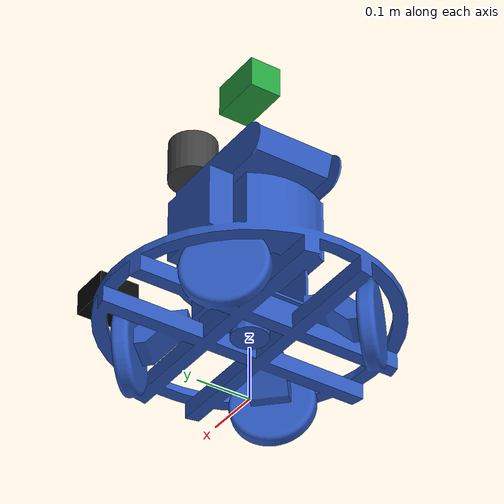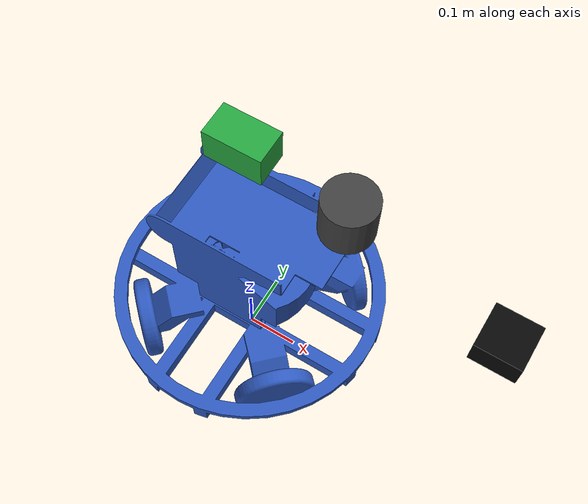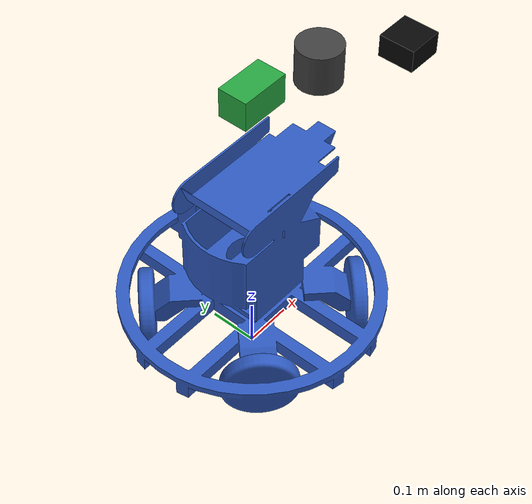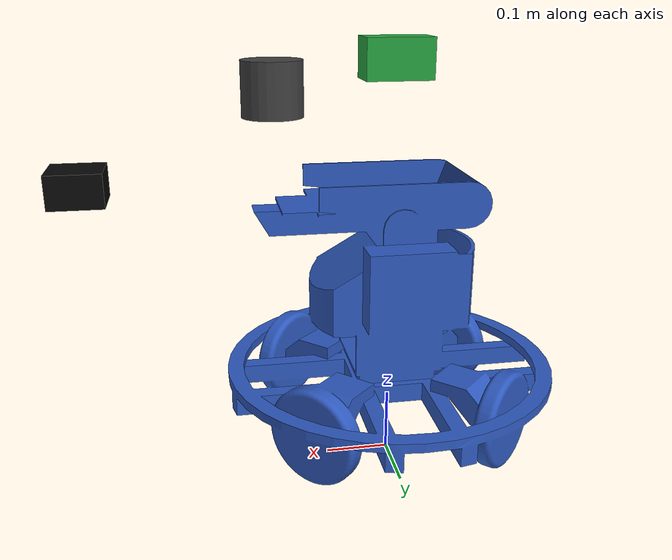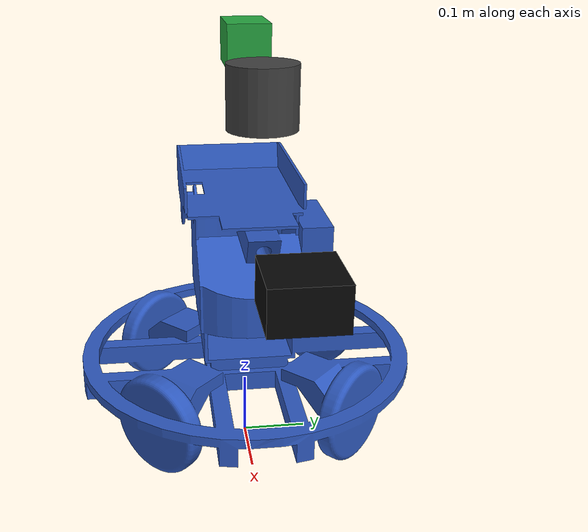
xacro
<?xml version="1.0"?>
<robot xmlns:xacro="http://www.ros.org/wiki/xacro" name="mid360_robot">

  <xacro:arg name="camera_topic" default="/camera/image_raw"/>
  <xacro:arg name="camera_info_topic" default="/camera/camera_info"/>
  <xacro:arg name="mid360_topic" default="/mid360_points"/>
  <xacro:arg name="laser_topic" default="/laser_points"/>

  <xacro:include filename="$(find bot_description)/urdf/base.urdf.xacro"/>
  <xacro:include filename="$(find bot_description)/urdf/camera.xacro"/>
  <xacro:include filename="$(find bot_description)/urdf/mid360_mount.xacro"/>
  <xacro:include filename="$(find bot_description)/urdf/laser.xacro"/>

  <xacro:base/>

  <xacro:camera
    name="front_camera"
    parent="base_link"
    image_topic="$(arg camera_topic)"
    info_topic="$(arg camera_info_topic)"
    update_rate="10.0">
    <!-- P把相机光学中心放在底盘前方、车顶上方。 -->
    <origin xyz="0.46 0 0.35" rpy="0 0 0"/>
  </xacro:camera>

  <xacro:mid360
    name="mid360"
    parent="base_link"
    topic="$(arg mid360_topic)"
    update_rate="10.0">
    <!-- 高安装可以让 360 度扫描避开底盘顶部，避免遮挡。 -->
    <origin xyz="0 0 0.52" rpy="0 0 0"/>
  </xacro:mid360>

  <xacro:laser
    name="laser"
    parent="base_link"
    topic="$(arg laser_topic)"
    update_rate="15.0">
    <!-- Front/top mount; the point cloud is published independently of MID360. -->
    <origin xyz="0.18 0 0.48" rpy="0 0 0"/>
  </xacro:laser>

  <!-- A simple planar controller makes cmd_vel/odom available in Gazebo. -->
  <gazebo>
    <plugin name="planar_move_controller" filename="libgazebo_ros_planar_move.so">
      <command_topic>cmd_vel</command_topic>
      <odometry_topic>odom</odometry_topic>
      <odometry_frame>odom</odometry_frame>
      <robot_base_frame>base_footprint</robot_base_frame>
      <publish_odom>true</publish_odom>
      <publish_odom_tf>true</publish_odom_tf>
      <update_rate>20.0</update_rate>
    </plugin>
  </gazebo>
</robot>

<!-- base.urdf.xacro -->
<robot xmlns:xacro="http://www.ros.org/wiki/xacro" name="base">

  <!-- Dimensions are deliberately kept in one place so the model is easy to tune. -->
  <xacro:property name="body_length" value="0.80"/>
  <xacro:property name="body_width" value="0.60"/>
  <xacro:property name="body_height" value="0.24"/>
  <xacro:property name="body_mass" value="8.0"/>

  <xacro:macro name="box_inertia" params="mass x y z">
    <inertial>
      <mass value="${mass}"/>
      <inertia
        ixx="${mass * (y*y + z*z) / 12.0}"
        ixy="0.0"
        ixz="0.0"
        iyy="${mass * (x*x + z*z) / 12.0}"
        iyz="0.0"
        izz="${mass * (x*x + y*y) / 12.0}"/>
    </inertial>
  </xacro:macro>

  <xacro:macro name="base">
    <!-- Ground-projected frame used by navigation and the planar Gazebo controller. -->
    <link name="base_footprint"/>

    <link name="base_link">
      <xacro:box_inertia
        mass="${body_mass}"
        x="${body_length}"
        y="${body_width}"
        z="${body_height}"/>

      <visual name="base_visual">
        <origin xyz="0 0 0" rpy="0 0 0"/>
        <geometry>
          <mesh filename="file://$(find bot_description)/meshes/base_link.STL"/>
        </geometry>
        <material name="body_blue">
          <color rgba="0.18 0.35 0.75 1.0"/>
        </material>
      </visual>

      <!-- A simple box collision keeps Gazebo stable even if the visual mesh is complex. -->
      <collision name="base_collision">
        <origin xyz="0 0 0" rpy="0 0 0"/>
        <geometry>
          <box size="${body_length} ${body_width} ${body_height}"/>
        </geometry>
      </collision>
    </link>

    <joint name="base_footprint_to_base_link" type="fixed">
      <parent link="base_footprint"/>
      <child link="base_link"/>
      <origin xyz="0 0 ${body_height / 2.0}" rpy="0 0 0"/>
    </joint>

    <gazebo reference="base_link">
      <material>Gazebo/Blue</material>
      <mu1>0.8</mu1>
      <mu2>0.8</mu2>
      <kp>20000.0</kp>
      <kd>10.0</kd>
      <minDepth>0.001</minDepth>
      <maxVel>100.0</maxVel>
    </gazebo>
  </xacro:macro>
</robot>

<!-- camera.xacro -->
<robot xmlns:xacro="http://www.ros.org/wiki/xacro" name="camera">

  <xacro:property name="camera_width" value="0.08"/>
  <xacro:property name="camera_height" value="0.05"/>
  <xacro:property name="camera_depth" value="0.08"/>
  <xacro:property name="camera_mass" value="0.10"/>

  <xacro:macro name="camera_inertia" params="mass x y z">
    <inertial>
      <mass value="${mass}"/>
      <inertia
        ixx="${mass * (y*y + z*z) / 12.0}"
        ixy="0.0"
        ixz="0.0"
        iyy="${mass * (x*x + z*z) / 12.0}"
        iyz="0.0"
        izz="${mass * (x*x + y*y) / 12.0}"/>
    </inertial>
  </xacro:macro>

  <!--
    A complete camera module: links, optical frame, fixed joints, and Gazebo sensor.
    The optical frame follows the ROS convention (x forward, y left, z up).
  -->
  <xacro:macro
    name="camera"
    params="name parent:=base_link image_topic:=/camera/image_raw info_topic:=/camera/camera_info update_rate:=10.0 *origin">

    <link name="${name}_link">
      <xacro:camera_inertia
        mass="${camera_mass}"
        x="${camera_width}"
        y="${camera_depth}"
        z="${camera_height}"/>
      <visual name="${name}_visual">
        <geometry>
          <box size="${camera_width} ${camera_depth} ${camera_height}"/>
        </geometry>
        <material name="camera_black">
          <color rgba="0.03 0.03 0.03 1.0"/>
        </material>
      </visual>
      <collision name="${name}_collision">
        <geometry>
          <box size="${camera_width} ${camera_depth} ${camera_height}"/>
        </geometry>
      </collision>
    </link>

    <link name="${name}_optical_link"/>

    <joint name="${name}_joint" type="fixed">
      <parent link="${parent}"/>
      <child link="${name}_link"/>
      <xacro:insert_block name="origin"/>
    </joint>

    <joint name="${name}_optical_joint" type="fixed">
      <parent link="${name}_link"/>
      <child link="${name}_optical_link"/>
      <origin xyz="0 0 0" rpy="-1.57079632679 0 -1.57079632679"/>
    </joint>

    <gazebo reference="${name}_link">
      <sensor type="camera" name="${name}_sensor">
        <always_on>true</always_on>
        <visualize>true</visualize>
        <update_rate>${update_rate}</update_rate>
        <camera name="${name}">
          <horizontal_fov>1.5009831567</horizontal_fov>
          <image>
            <width>800</width>
            <height>600</height>
            <format>R8G8B8</format>
          </image>
          <clip>
            <near>0.05</near>
            <far>100.0</far>
          </clip>
          <noise>
            <type>gaussian</type>
            <mean>0.0</mean>
            <stddev>0.007</stddev>
          </noise>
        </camera>
        <plugin name="${name}_gazebo_ros_camera" filename="libgazebo_ros_camera.so">
          <camera_name>${name}</camera_name>
          <frame_name>${name}_optical_link</frame_name>
          <image_topic_name>${image_topic}</image_topic_name>
          <camera_info_topic_name>${info_topic}</camera_info_topic_name>
        </plugin>
      </sensor>
    </gazebo>
  </xacro:macro>
</robot>

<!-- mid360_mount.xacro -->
<robot xmlns:xacro="http://www.ros.org/wiki/xacro" name="mid360">

  <xacro:property name="mid360_length" value="0.10"/>
  <xacro:property name="mid360_width" value="0.06"/>
  <xacro:property name="mid360_height" value="0.06"/>
  <xacro:property name="mid360_mass" value="0.40"/>
  <xacro:property name="mid360_min_range" value="0.10"/>
  <xacro:property name="mid360_max_range" value="200.0"/>
  <xacro:property name="mid360_samples" value="40000"/>
  <xacro:property name="mid360_resolution" value="0.002"/>
  <xacro:property name="mid360_noise_mean" value="0.0"/>
  <xacro:property name="mid360_noise_stddev" value="0.01"/>

  <xacro:macro name="mid360_box_inertia" params="mass x y z">
    <inertial>
      <mass value="${mass}"/>
      <inertia
        ixx="${mass * (y*y + z*z) / 12.0}"
        ixy="0.0"
        ixz="0.0"
        iyy="${mass * (x*x + z*z) / 12.0}"
        iyz="0.0"
        izz="${mass * (x*x + y*y) / 12.0}"/>
    </inertial>
  </xacro:macro>

  <xacro:macro
    name="mid360"
    params="name:=mid360 parent:=base_link topic:=/mid360_points update_rate:=10.0 *origin">

    <link name="${name}">
      <xacro:mid360_box_inertia
        mass="${mid360_mass}"
        x="${mid360_length}"
        y="${mid360_width}"
        z="${mid360_height}"/>
      <visual name="${name}_visual">
        <geometry>
          <box size="${mid360_length} ${mid360_width} ${mid360_height}"/>
        </geometry>
        <material name="mid360_green">
          <color rgba="0.15 0.65 0.25 1.0"/>
        </material>
      </visual>
      <collision name="${name}_collision">
        <geometry>
          <box size="${mid360_length} ${mid360_width} ${mid360_height}"/>
        </geometry>
      </collision>
    </link>

    <joint name="${name}_joint" type="fixed">
      <parent link="${parent}"/>
      <child link="${name}"/>
      <xacro:insert_block name="origin"/>
    </joint>

    <gazebo reference="${name}">
      <sensor type="ray" name="${name}_sensor">
        <pose>0 0 0 0 0 0</pose>
        <visualize>false</visualize>
        <update_rate>${update_rate}</update_rate>
        <plugin name="${name}_livox_plugin" filename="libros2_livox.so">
          <ray>
            <scan>
              <horizontal>
                <samples>100</samples>
                <resolution>1</resolution>
                <min_angle>0.0</min_angle>
                <max_angle>${2.0*3.141592653589793}</max_angle>
              </horizontal>
              <vertical>
                <samples>360</samples>
                <resolution>1</resolution>
                <min_angle>${-7.22/180.0*3.141592653589793}</min_angle>
                <max_angle>${55.22/180.0*3.141592653589793}</max_angle>
              </vertical>
            </scan>
            <range>
              <min>${mid360_min_range}</min>
              <max>${mid360_max_range}</max>
              <resolution>${mid360_resolution}</resolution>
            </range>
            <noise>
              <type>gaussian</type>
              <mean>${mid360_noise_mean}</mean>
              <stddev>${mid360_noise_stddev}</stddev>
            </noise>
          </ray>
          <visualize>false</visualize>
          <samples>${mid360_samples}</samples>
          <downsample>1</downsample>
          <csv_file_name>$(find bot_description)/scan_mode/mid360.csv</csv_file_name>
          <topic>${topic}</topic>
        </plugin>
      </sensor>
    </gazebo>
  </xacro:macro>
</robot>

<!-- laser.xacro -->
<robot xmlns:xacro="http://www.ros.org/wiki/xacro" name="laser">

  <!-- Conventional rotating 3D laser used alongside the Livox MID360. -->
  <xacro:macro name="laser"
    params="name:=laser parent:=base_link topic:=/laser_points update_rate:=15.0 *origin">
    <link name="${name}_link">
      <visual name="${name}_visual">
        <geometry><cylinder radius="0.045" length="0.08"/></geometry>
        <material name="laser_gray"><color rgba="0.25 0.25 0.25 1.0"/></material>
      </visual>
      <!-- Sensor housings are visual only, so their own geometry cannot pollute scans. -->
    </link>

    <joint name="${name}_joint" type="fixed">
      <parent link="${parent}"/>
      <child link="${name}_link"/>
      <xacro:insert_block name="origin"/>
    </joint>

    <gazebo reference="${name}_link">
      <sensor type="ray" name="${name}_sensor">
        <always_on>true</always_on>
        <visualize>false</visualize>
        <update_rate>${update_rate}</update_rate>
        <ray>
          <scan>
            <horizontal>
              <samples>720</samples>
              <resolution>1</resolution>
              <min_angle>-3.14159265359</min_angle>
              <max_angle>3.14159265359</max_angle>
            </horizontal>
            <vertical>
              <samples>16</samples>
              <resolution>1</resolution>
              <min_angle>-0.261799</min_angle>
              <max_angle>0.261799</max_angle>
            </vertical>
          </scan>
          <range>
            <min>0.10</min>
            <max>100.0</max>
            <resolution>0.01</resolution>
          </range>
          <noise><type>gaussian</type><mean>0.0</mean><stddev>0.01</stddev></noise>
        </ray>
        <plugin name="${name}_gazebo_ros_ray_sensor" filename="libgazebo_ros_ray_sensor.so">
          <ros><remapping>~/out:=${topic}</remapping></ros>
          <output_type>sensor_msgs/PointCloud2</output_type>
          <frame_name>${name}_link</frame_name>
        </plugin>
      </sensor>
    </gazebo>
  </xacro:macro>
</robot>
